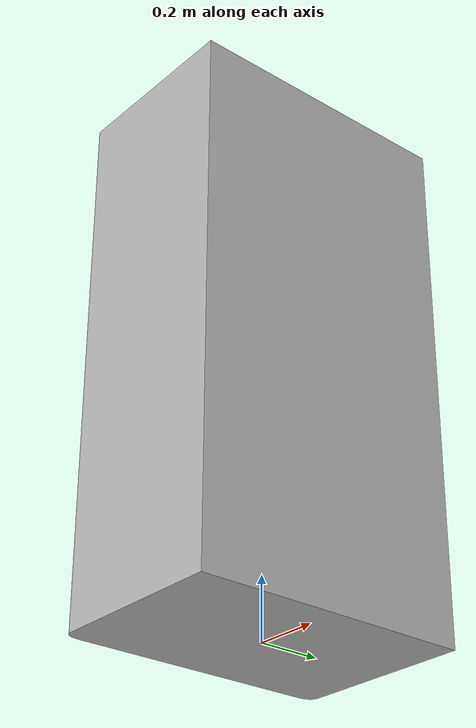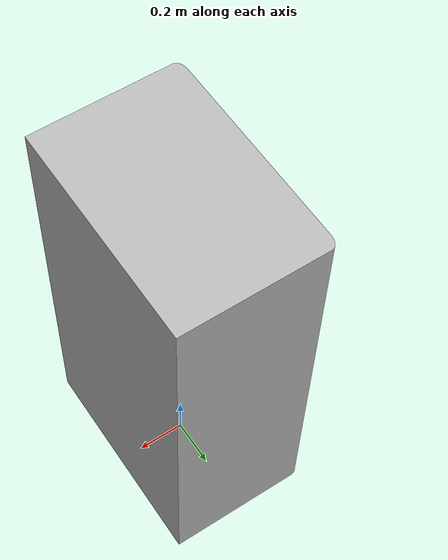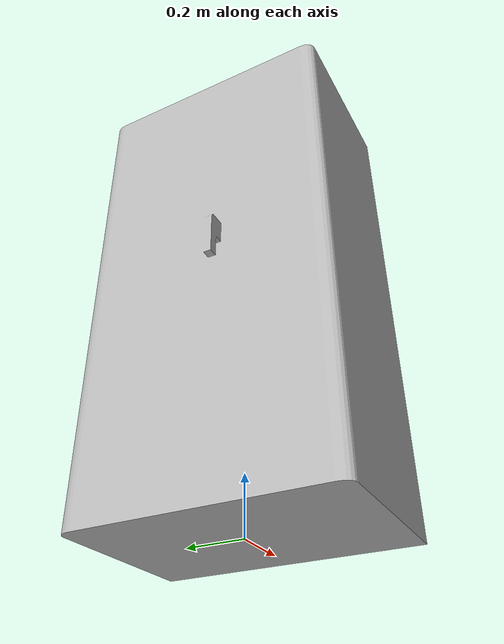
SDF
<sdf version="1.7">
  <model name="blue_cabinet" canonical_link="blue_cabinet_link">
    <link name="blue_cabinet_link">
      <visual name="visual">
        <pose>0 0 0 1.5708 0 0</pose>
        <geometry>
          <mesh>
            <uri>model://blue_cabinet/meshes/blue_cabinet.obj</uri>
            <scale>1 1 1</scale>
          </mesh>
        </geometry>
      </visual>

      <collision name="collision">
        <pose>0 0 0 1.5708 0 0</pose>
        <geometry>
          <mesh>
            <uri>model://blue_cabinet/meshes/blue_cabinet.obj</uri>
            <scale>1 1 1</scale>
          </mesh>
        </geometry>
      </collision>
    </link>
  </model>
</sdf>
